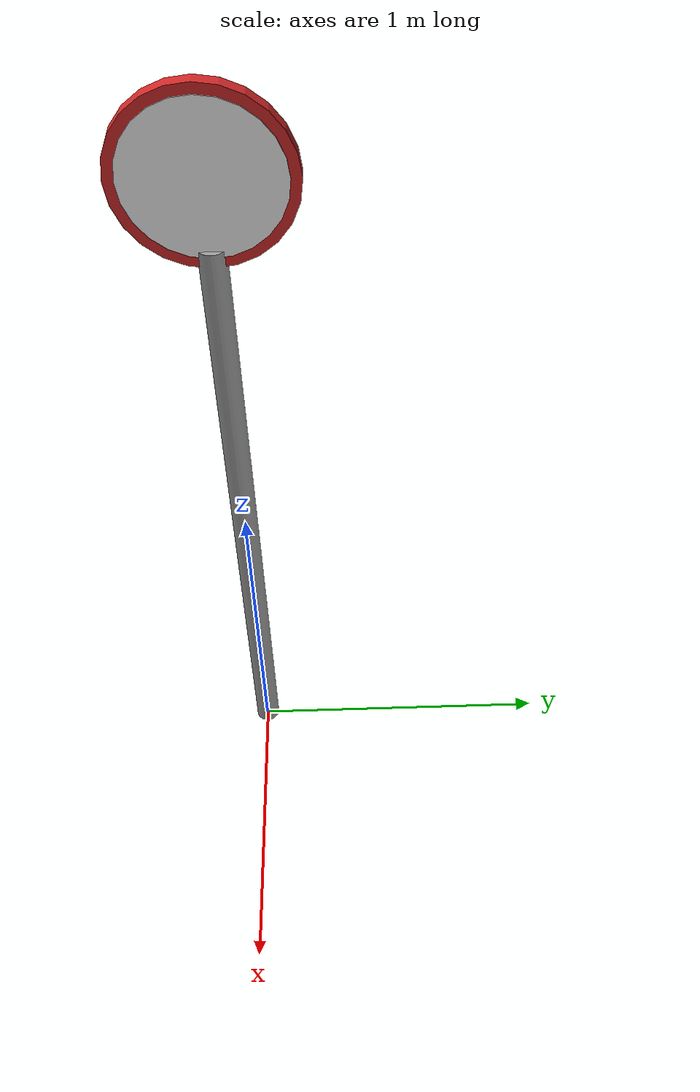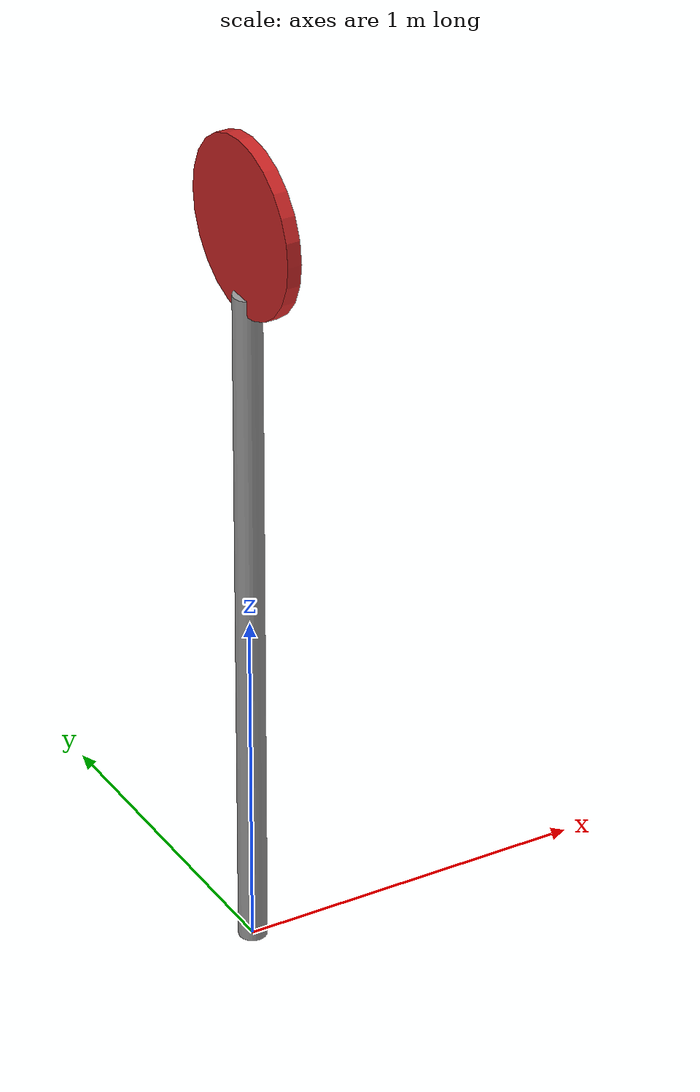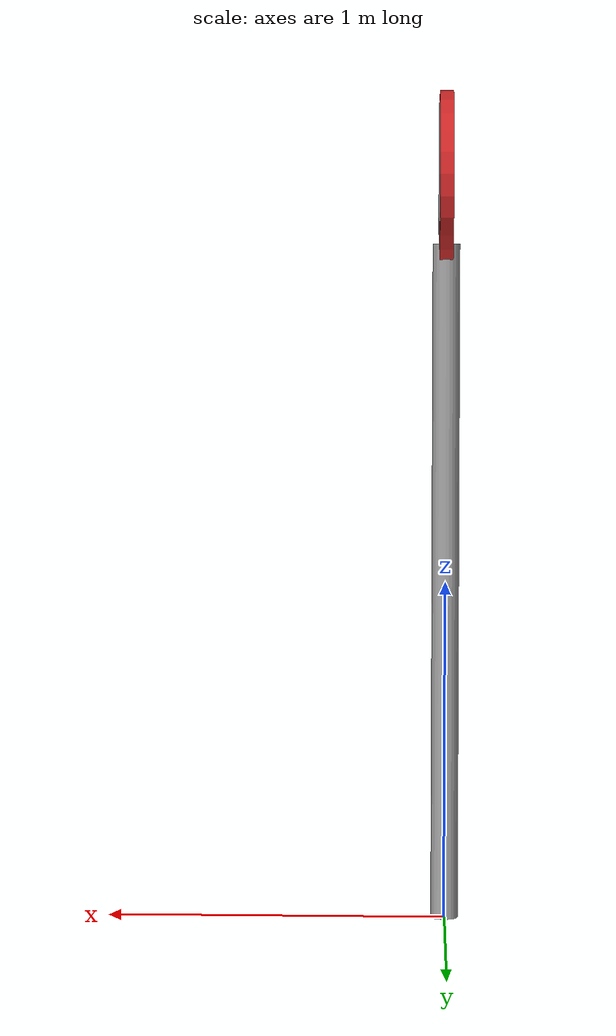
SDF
<?xml version="1.0" ?>
<sdf version="1.6">
  <model name="stop_sign">
    <static>true</static>
    <link name="link">
      <collision name="collision_post">
        <pose>0 0 1.0 0 0 0</pose>
        <geometry>
          <cylinder>
            <radius>0.04</radius>
            <length>2.0</length>
          </cylinder>
        </geometry>
      </collision>
      <visual name="visual_post">
        <pose>0 0 1.0 0 0 0</pose>
        <geometry>
          <cylinder>
            <radius>0.04</radius>
            <length>2.0</length>
          </cylinder>
        </geometry>
        <material>
          <script>
            <uri>file://media/materials/scripts/gazebo.material</uri>
            <name>Gazebo/Grey</name>
          </script>
        </material>
      </visual>
      <visual name="visual_board">
        <pose>0 0 2.2 0 1.5707 0</pose>
        <geometry>
          <cylinder>
            <radius>0.25</radius>
            <length>0.04</length>
          </cylinder>
        </geometry>
        <material>
          <script>
            <uri>file://media/materials/scripts/gazebo.material</uri>
            <name>Gazebo/Red</name>
          </script>
        </material>
      </visual>
      <visual name="visual_white_border">
        <pose>0.021 0 2.2 0 1.5707 0</pose>
        <geometry>
          <cylinder>
            <radius>0.22</radius>
            <length>0.002</length>
          </cylinder>
        </geometry>
        <material>
          <script>
            <uri>file://media/materials/scripts/gazebo.material</uri>
            <name>Gazebo/White</name>
          </script>
        </material>
      </visual>
    </link>
  </model>
</sdf>
